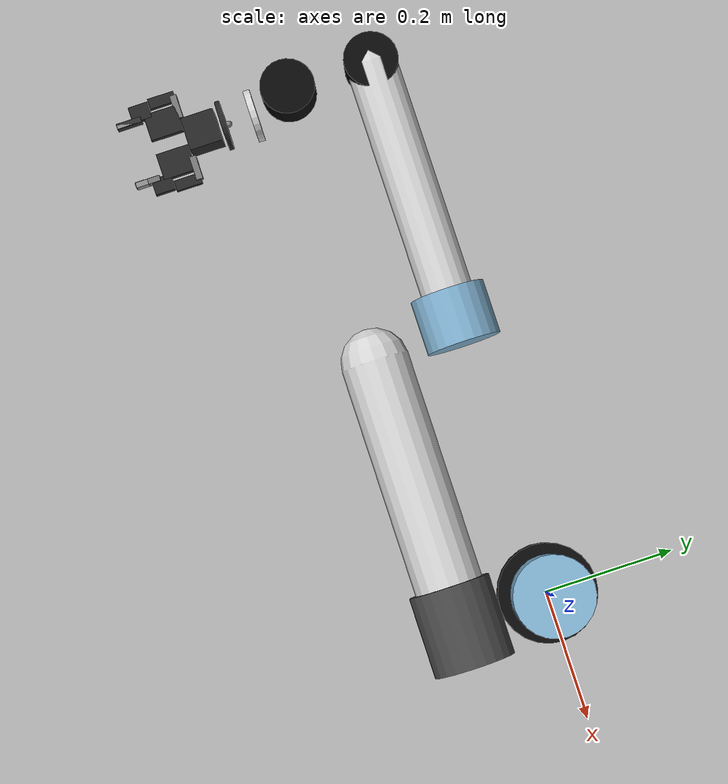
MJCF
<mujoco model="ur5e_2f85">
  <compiler angle="radian" autolimits="true"/>

  <option integrator="implicitfast" cone="elliptic" impratio="10"/>

  <default>
    <default class="ur5e">
      <joint axis="0 1 0" range="-6.28319 6.28319" armature="0.1"/>
      <general gaintype="fixed" biastype="affine" ctrlrange="-6.2831 6.2831" gainprm="2000" biasprm="0 -2000 -400"
        forcerange="-150 150"/>
      <default class="size3">
        <default class="size3_limited">
          <joint range="-3.1415 3.1415"/>
          <general ctrlrange="-3.1415 3.1415"/>
        </default>
      </default>
      <default class="size1">
        <general gainprm="500" biasprm="0 -500 -100" forcerange="-28 28"/>
      </default>
    </default>
    <default class="2f85">
      <general biastype="affine"/>
      <joint axis="1 0 0"/>
      <default class="driver">
        <joint range="0 0.8" armature="0.005" damping="0.1" solimplimit="0.95 0.99 0.001" solreflimit="0.005 1"/>
      </default>
      <default class="follower">
        <joint range="-0.872664 0.872664" armature="0.001" pos="0 -0.018 0.0065" solimplimit="0.95 0.99 0.001" solreflimit="0.005 1"/>
      </default>
      <default class="spring_link">
        <joint range="-0.29670597283 0.8" armature="0.001" stiffness="0.05" springref="2.62" damping="0.00125"/>
      </default>
      <default class="coupler">
        <joint range="-1.57 0" armature="0.001" solimplimit="0.95 0.99 0.001" solreflimit="0.005 1"/>
      </default>
      <default class="pad_box1">
        <geom mass="0" type="box" pos="0 -0.0026 0.028125" size="0.011 0.004 0.009375" friction="0.7"
          solimp="0.95 0.99 0.001" solref="0.004 1" priority="1" rgba="0.55 0.55 0.55 1"/>
      </default>
      <default class="pad_box2">
        <geom mass="0" type="box" pos="0 -0.0026 0.009375" size="0.011 0.004 0.009375" friction="0.6"
          solimp="0.95 0.99 0.001" solref="0.004 1" priority="1" rgba="0.45 0.45 0.45 1"/>
      </default>
    </default>
  </default>

  <worldbody>
    <light name="spotlight" mode="targetbodycom" target="wrist_2_link" pos="0 -1 2"/>
    <body name="base" quat="0 0 0 -1" childclass="ur5e">
      <inertial mass="4.0" pos="0 0 0" diaginertia="0.00443333156 0.00443333156 0.0072"/>
      <geom type="cylinder" size="0.075 0.025" pos="0 0 0.025" rgba="0.033 0.033 0.033 1"/>
      <body name="shoulder_link" pos="0 0 0.163">
        <inertial mass="3.7" pos="0 0 0" diaginertia="0.0102675 0.0102675 0.00666"/>
        <joint name="shoulder_pan_joint" class="size3" axis="0 0 1"/>
        <geom type="cylinder" size="0.06 0.04" pos="0 0 0" rgba="0.49 0.678 0.8 1"/>
        <geom type="capsule" size="0.06 0.06" pos="0 0 -0.04" group="3"/>
        <body name="upper_arm_link" pos="0 0.138 0" quat="1 0 1 0">
          <inertial mass="8.393" pos="0 0 0.2125" diaginertia="0.133886 0.133886 0.0151074"/>
          <joint name="shoulder_lift_joint" class="size3"/>
          <geom type="cylinder" size="0.06 0.06" pos="0 0 0" rgba="0.278 0.278 0.278 1"/>
          <geom type="capsule" size="0.05 0.2" pos="0 0 0.2" rgba="0.82 0.82 0.82 1"/>
          <geom type="capsule" size="0.06 0.06" pos="0 -0.04 0" quat="1 1 0 0" group="3"/>
          <geom type="capsule" size="0.05 0.2" pos="0 0 0.2" group="3"/>
          <body name="forearm_link" pos="0 -0.131 0.425">
            <inertial mass="2.275" pos="0 0 0.196" diaginertia="0.0311796 0.0311796 0.004095"/>
            <joint name="elbow_joint" class="size3_limited"/>
            <geom type="cylinder" size="0.055 0.04" pos="0 0 0" rgba="0.49 0.678 0.8 1"/>
            <geom type="capsule" size="0.038 0.19" pos="0 0 0.2" rgba="0.82 0.82 0.82 1"/>
            <geom type="capsule" size="0.055 0.06" pos="0 0.08 0" quat="1 1 0 0" group="3"/>
            <geom type="capsule" size="0.038 0.19" pos="0 0 0.2" group="3"/>
            <body name="wrist_1_link" pos="0 0 0.392" quat="1 0 1 0">
              <inertial mass="1.219" pos="0 0.127 0" diaginertia="0.0025599 0.0025599 0.0021942"/>
              <joint name="wrist_1_joint" class="size1"/>
              <geom type="cylinder" size="0.04 0.035" pos="0 0 0" rgba="0.033 0.033 0.033 1"/>
              <geom type="capsule" size="0.04 0.07" pos="0 0.05 0" quat="1 1 0 0" group="3"/>
              <body name="wrist_2_link" pos="0 0.127 0">
                <inertial mass="1.219" pos="0 0 0.1" diaginertia="0.0025599 0.0025599 0.0021942"/>
                <joint name="wrist_2_joint" axis="0 0 1" class="size1"/>
                <geom type="cylinder" size="0.04 0.035" pos="0 0 0" rgba="0.033 0.033 0.033 1"/>
                <geom type="capsule" size="0.04 0.06" pos="0 0 0.04" group="3"/>
                <geom type="capsule" size="0.04 0.04" pos="0 0.02 0.1" quat="1 1 0 0" group="3"/>
                <body name="wrist_3_link" pos="0 0 0.1">
                  <inertial mass="0.1889" pos="0 0.0771683 0" quat="1 0 0 1"
                    diaginertia="0.000132134 9.90863e-05 9.90863e-05"/>
                  <joint name="wrist_3_joint" class="size1"/>
                  <geom type="cylinder" size="0.04 0.005" pos="0 0.06 0" quat="1 1 0 0" rgba="0.82 0.82 0.82 1"/>
                  <geom type="cylinder" size="0.04 0.02" pos="0 0.08 0" quat="1 1 0 0" group="3"/>
                  <site name="attachment_site" pos="0 0.1 0" quat="-1 1 0 0"/>
                  <!-- Robotiq 2F-85 gripper -->
                  <body name="base_mount" pos="0 0.1 0" quat="-1 1 0 0" childclass="2f85">
                    <geom type="cylinder" size="0.038 0.0035" pos="0 0 0.007" rgba="0.149 0.149 0.149 1"/>
                    <body name="gripper_base" pos="0 0 0.0108" quat="1 0 0 -1">
                      <inertial mass="0.777441" pos="0 -2.70394e-05 0.0354675" quat="1 -0.00152849 0 0"
                        diaginertia="0.000260285 0.000225381 0.000152708"/>
                      <geom type="box" size="0.03 0.025 0.025" pos="0 0 0.03" rgba="0.149 0.149 0.149 1"/>
                      <body name="gripper_center" pos="0 0 0.145">
                        <site name="pinch" pos="0 0 0" type="sphere" group="5" rgba="0.9 0.9 0.9 1" size="0.005"/>
                        <site name="gripper_center" pos="0 0 0" type="sphere" group="5" rgba="0.9 0.9 0.9 1" size="0.005"/>
                      </body>
                      <!-- Right-hand side 4-bar linkage -->
                      <body name="right_driver" pos="0 0.0306011 0.054904">
                        <inertial mass="0.00899563" pos="2.96931e-12 0.0177547 0.00107314" quat="0.681301 0.732003 0 0"
                          diaginertia="1.72352e-06 1.60906e-06 3.22006e-07"/>
                        <joint name="right_driver_joint" class="driver"/>
                        <geom type="box" size="0.008 0.018 0.005" pos="0 0.018 0.001" rgba="0.4627 0.4627 0.4627 1"/>
                        <body name="right_coupler" pos="0 0.0315 -0.0041">
                          <inertial mass="0.0140974" pos="0 0.00301209 0.0232175" quat="0.705636 -0.0455904 0.0455904 0.705636"
                            diaginertia="4.16206e-06 3.52216e-06 8.88131e-07"/>
                          <joint name="right_coupler_joint" class="coupler"/>
                          <geom type="box" size="0.006 0.008 0.02" pos="0 0.003 0.023" rgba="0.149 0.149 0.149 1"/>
                        </body>
                      </body>
                      <body name="right_spring_link" pos="0 0.0132 0.0609">
                        <inertial mass="0.0221642" pos="-8.65005e-09 0.0181624 0.0212658" quat="0.663403 -0.244737 0.244737 0.663403"
                          diaginertia="8.96853e-06 6.71733e-06 2.63931e-06"/>
                        <joint name="right_spring_link_joint" class="spring_link"/>
                        <geom type="box" size="0.008 0.02 0.025" pos="0 0.018 0.021" rgba="0.149 0.149 0.149 1"/>
                        <body name="right_follower" pos="0 0.055 0.0375">
                          <inertial mass="0.0125222" pos="0 -0.011046 0.0124786" quat="1 0.1664 0 0"
                            diaginertia="2.67415e-06 2.4559e-06 6.02031e-07"/>
                          <joint name="right_follower_joint" class="follower"/>
                          <geom type="box" size="0.008 0.012 0.015" pos="0 -0.011 0.012" rgba="0.149 0.149 0.149 1"/>
                          <body name="right_pad" pos="0 -0.0189 0.01352">
                            <geom class="pad_box1" name="right_pad1"/>
                            <geom class="pad_box2" name="right_pad2"/>
                            <inertial mass="0.0035" pos="0 -0.0025 0.0185" quat="0.707107 0 0 0.707107"
                              diaginertia="4.73958e-07 3.64583e-07 1.23958e-07"/>
                            <geom type="box" size="0.011 0.004 0.019" pos="0 -0.003 0.019" rgba="0.1882 0.1882 0.1882 1"/>
                          </body>
                        </body>
                      </body>
                      <!-- Left-hand side 4-bar linkage -->
                      <body name="left_driver" pos="0 -0.0306011 0.054904" quat="0 0 0 1">
                        <inertial mass="0.00899563" pos="0 0.0177547 0.00107314" quat="0.681301 0.732003 0 0"
                          diaginertia="1.72352e-06 1.60906e-06 3.22006e-07"/>
                        <joint name="left_driver_joint" class="driver"/>
                        <geom type="box" size="0.008 0.018 0.005" pos="0 0.018 0.001" rgba="0.4627 0.4627 0.4627 1"/>
                        <body name="left_coupler" pos="0 0.0315 -0.0041">
                          <inertial mass="0.0140974" pos="0 0.00301209 0.0232175" quat="0.705636 -0.0455904 0.0455904 0.705636"
                            diaginertia="4.16206e-06 3.52216e-06 8.88131e-07"/>
                          <joint name="left_coupler_joint" class="coupler"/>
                          <geom type="box" size="0.006 0.008 0.02" pos="0 0.003 0.023" rgba="0.149 0.149 0.149 1"/>
                        </body>
                      </body>
                      <body name="left_spring_link" pos="0 -0.0132 0.0609" quat="0 0 0 1">
                        <inertial mass="0.0221642" pos="-8.65005e-09 0.0181624 0.0212658" quat="0.663403 -0.244737 0.244737 0.663403"
                          diaginertia="8.96853e-06 6.71733e-06 2.63931e-06"/>
                        <joint name="left_spring_link_joint" class="spring_link"/>
                        <geom type="box" size="0.008 0.02 0.025" pos="0 0.018 0.021" rgba="0.149 0.149 0.149 1"/>
                        <body name="left_follower" pos="0 0.055 0.0375">
                          <inertial mass="0.0125222" pos="0 -0.011046 0.0124786" quat="1 0.1664 0 0"
                            diaginertia="2.67415e-06 2.4559e-06 6.02031e-07"/>
                          <joint name="left_follower_joint" class="follower"/>
                          <geom type="box" size="0.008 0.012 0.015" pos="0 -0.011 0.012" rgba="0.149 0.149 0.149 1"/>
                          <body name="left_pad" pos="0 -0.0189 0.01352">
                            <geom class="pad_box1" name="left_pad1"/>
                            <geom class="pad_box2" name="left_pad2"/>
                            <inertial mass="0.0035" pos="0 -0.0025 0.0185" quat="1 0 0 1"
                              diaginertia="4.73958e-07 3.64583e-07 1.23958e-07"/>
                            <geom type="box" size="0.011 0.004 0.019" pos="0 -0.003 0.019" rgba="0.1882 0.1882 0.1882 1"/>
                          </body>
                        </body>
                      </body>
                    </body>
                  </body>
                </body>
              </body>
            </body>
          </body>
        </body>
      </body>
    </body>
  </worldbody>

  <contact>
    <exclude body1="gripper_base" body2="left_driver"/>
    <exclude body1="gripper_base" body2="right_driver"/>
    <exclude body1="gripper_base" body2="left_spring_link"/>
    <exclude body1="gripper_base" body2="right_spring_link"/>
    <exclude body1="right_coupler" body2="right_follower"/>
    <exclude body1="left_coupler" body2="left_follower"/>
  </contact>

  <tendon>
    <fixed name="split">
      <joint joint="right_driver_joint" coef="0.5"/>
      <joint joint="left_driver_joint" coef="0.5"/>
    </fixed>
  </tendon>

  <equality>
    <connect anchor="0 0 0" body1="right_follower" body2="right_coupler" solimp="0.95 0.99 0.001" solref="0.005 1"/>
    <connect anchor="0 0 0" body1="left_follower" body2="left_coupler" solimp="0.95 0.99 0.001" solref="0.005 1"/>
    <joint joint1="right_driver_joint" joint2="left_driver_joint" polycoef="0 1 0 0 0" solimp="0.95 0.99 0.001"
      solref="0.005 1"/>
  </equality>

  <actuator>
    <general class="size3" name="shoulder_pan" joint="shoulder_pan_joint"/>
    <general class="size3" name="shoulder_lift" joint="shoulder_lift_joint"/>
    <general class="size3_limited" name="elbow" joint="elbow_joint"/>
    <general class="size1" name="wrist_1" joint="wrist_1_joint"/>
    <general class="size1" name="wrist_2" joint="wrist_2_joint"/>
    <general class="size1" name="wrist_3" joint="wrist_3_joint"/>
    <general class="2f85" name="fingers_actuator" tendon="split" forcerange="-5 5" ctrlrange="0 255"
      gainprm="0.3137255 0 0" biasprm="0 -100 -10"/>
  </actuator>

  <keyframe>
    <key name="home" qpos="-1.5708 -1.5708 1.5708 -1.5708 -1.5708 0 0 0 0 0 0 0 0 0" ctrl="-1.5708 -1.5708 1.5708 -1.5708 -1.5708 0 0"/>
  </keyframe>
</mujoco>
